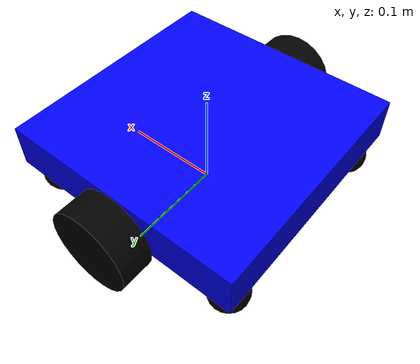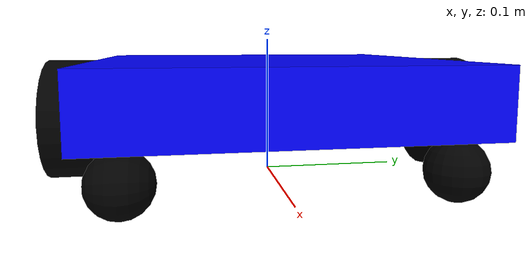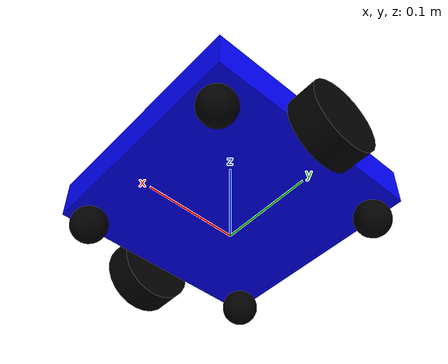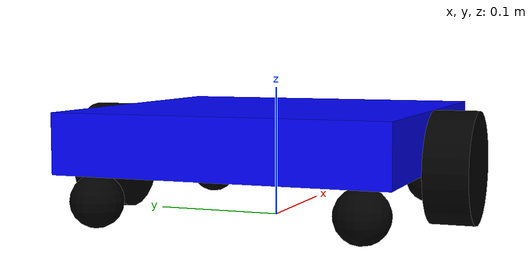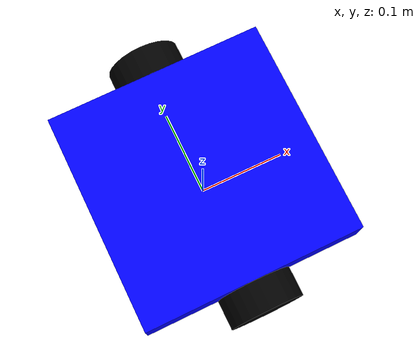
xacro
<?xml version="1.0"?>
<robot xmlns:xacro="http://www.ros.org/wiki/xacro">

    <xacro:include filename="inertial_macros.xacro"/>

    <material name="white">
        <color rgba="1 1 1 1"/>
    </material>

    <material name="black">
        <color rgba="0 0 0 1"/>
    </material>

    <material name="red">
        <color rgba="1 0 0 1"/>
    </material>

    <material name="green">
        <color rgba="0 1 0 1"/>
    </material>

    <material name="blue">
        <color rgba="0 0 1 1"/>
    </material>

    <material name="orange">
        <color rgba="1 0.5 0 1"/>
    </material>

    <!-- Base link -->

    <link name="base_link">

    </link>

    <joint name="chassis_joint" type="fixed">
        <parent link="base_link"/>
        <child link="chassis"/>
        <origin xyz="0 0 0"/>
    </joint>

    <!-- Chassis -->
    <link name="chassis">
        <visual>
            <origin xyz="0 0 0.0625"/>
            <geometry>
                <box size="0.25 0.25 0.045"/>
            </geometry>
            <material name="blue"/>
        </visual>
        <collision>
            <origin xyz="0 0 0.0625"/>
            <geometry>
                <box size="0.25 0.25 0.045"/>
            </geometry>
        </collision>
        <xacro:inertial_box mass="0.5" x="0.25" y="0.25" z="0.045">
            <origin xyz="0 0 0.0625" rpy="0 0 0"/>
        </xacro:inertial_box>
    </link>

    <!-- Left Wheel -->
    <joint name="left_wheel_joint" type="continuous">
        <parent link="base_link"/>
        <child link="left_wheel"/>
        <origin xyz="0 0.142 0.0425" rpy="-${pi/2} 0 0"/>
        <axis xyz="0 0 -1"/>
    </joint>
    <link name="left_wheel">
        <visual>
            <geometry>
                <cylinder radius="0.0425" length="0.0334"/>
            </geometry>
            <material name="black"/>
        </visual>
        <collision>
            <geometry>
                <sphere radius="0.0425"/>
            </geometry>
        </collision>
        <xacro:inertial_cylinder mass="0.1" length="0.0334" radius="0.0425">
            <origin xyz="0 0 0" rpy="0 0 0"/>
        </xacro:inertial_cylinder>
    </link>

    <!-- Right Wheel -->
    <joint name="right_wheel_joint" type="continuous">
        <parent link="base_link"/>
        <child link="right_wheel"/>
        <origin xyz="0 -0.142 0.0425" rpy="${pi/2} 0 0"/>
        <axis xyz="0 0 1"/>
    </joint>
    <link name="right_wheel">
        <visual>
            <geometry>
                <cylinder radius="0.0425" length="0.0334"/>
            </geometry>
            <material name="black"/>
        </visual>
        <collision>
            <geometry>
                <sphere radius="0.0425"/>
            </geometry>
        </collision>
        <xacro:inertial_cylinder mass="0.1" length="0.0334" radius="0.0425">
            <origin xyz="0 0 0" rpy="0 0 0"/>
        </xacro:inertial_cylinder>
    </link>

    <gazebo reference="caster_wheel_1">
        <collision><surface><friction><ode>
            <mu>0</mu><mu2>0</mu2>
        </ode></friction></surface></collision>
    </gazebo>
    <gazebo reference="caster_wheel_2">
        <collision><surface><friction><ode>
            <mu>0</mu><mu2>0</mu2>
        </ode></friction></surface></collision>
    </gazebo>
    <gazebo reference="caster_wheel_3">
        <collision><surface><friction><ode>
            <mu>0</mu><mu2>0</mu2>
        </ode></friction></surface></collision>
    </gazebo>
    <gazebo reference="caster_wheel_4">
        <collision><surface><friction><ode>
            <mu>0</mu><mu2>0</mu2>
        </ode></friction></surface></collision>
    </gazebo>

    <!-- Caster Wheel 1-->
    <joint name="caster_wheel_1_joint" type="fixed">
    <parent link="chassis"/>
    <child link="caster_wheel_1"/>
    <origin xyz="0.105 0.1 0.02" rpy="0 0 0"/>
    </joint>

    <link name="caster_wheel_1">
        <visual>
            <geometry>
                <sphere radius="0.02"/>
            </geometry>
            <material name="black"/>
        </visual>
        <collision>
            <geometry>
                <sphere radius="0.02"/>
            </geometry>
        </collision>
        <xacro:inertial_sphere mass="0.1" radius="0.02">
            <origin xyz="0 0 0" rpy="0 0 0"/>
        </xacro:inertial_sphere>
    </link>

    <!-- Caster Wheel 2-->
    <joint name="caster_wheel_2_joint" type="fixed">
    <parent link="chassis"/>
    <child link="caster_wheel_2"/>
    <origin xyz="0.105 -0.1 0.02" rpy="${pi/2} 0 0"/>
    </joint>

    <link name="caster_wheel_2">
        <visual>
            <geometry>
                <sphere radius="0.02"/>
            </geometry>
            <material name="black"/>
        </visual>
        <collision>
            <geometry>
                <sphere radius="0.02"/>
            </geometry>
        </collision>
            <xacro:inertial_sphere mass="0.1" radius="0.02">
            <origin xyz="0 0 0" rpy="0 0 0"/>
        </xacro:inertial_sphere>
    </link>

    <!-- Caster Wheel 3 (Back Left) -->
<joint name="caster_wheel_3_joint" type="fixed">
    <parent link="chassis"/>
    <child link="caster_wheel_3"/>
    <origin xyz="-0.105 0.1 0.02" rpy="0 0 0"/>
</joint>

<link name="caster_wheel_3">
    <visual>
        <geometry>
            <sphere radius="0.02"/>
        </geometry>
        <material name="black"/>
    </visual>
    <collision>
        <geometry>
            <sphere radius="0.02"/>
        </geometry>
    </collision>
    <xacro:inertial_sphere mass="0.1" radius="0.02">
        <origin xyz="0 0 0" rpy="0 0 0"/>
    </xacro:inertial_sphere>
</link>

<!-- Caster Wheel 4 (Back Right) -->
<joint name="caster_wheel_4_joint" type="fixed">
    <parent link="chassis"/>
    <child link="caster_wheel_4"/>
    <origin xyz="-0.105 -0.1 0.02" rpy="${pi/2} 0 0"/>
</joint>

<link name="caster_wheel_4">
    <visual>
        <geometry>
            <sphere radius="0.02"/>
        </geometry>
        <material name="black"/>
    </visual>
    <collision>
        <geometry>
            <sphere radius="0.02"/>
        </geometry>
    </collision>
    <xacro:inertial_sphere mass="0.1" radius="0.02">
        <origin xyz="0 0 0" rpy="0 0 0"/>
    </xacro:inertial_sphere>
</link>

</robot>
